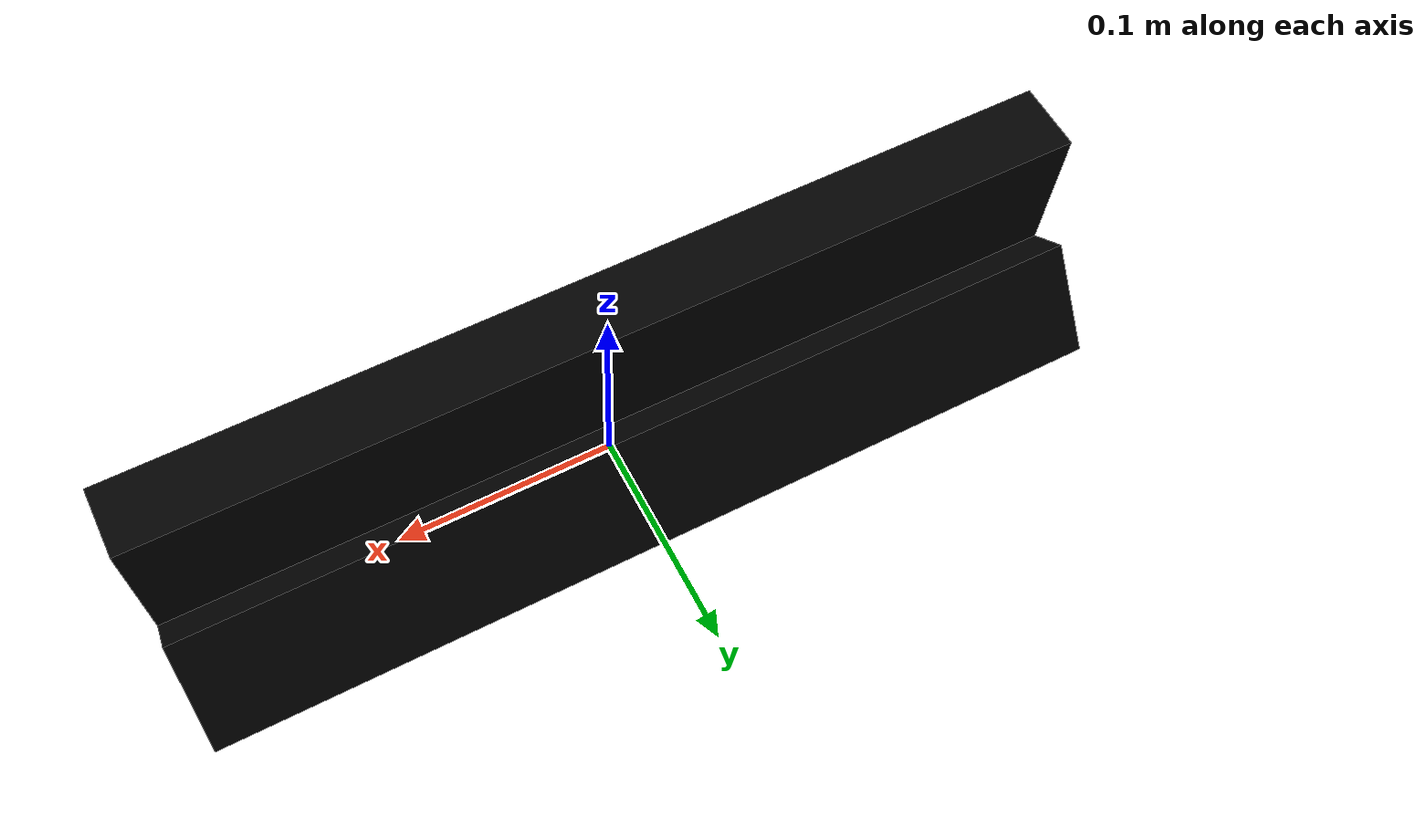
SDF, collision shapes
<?xml version='1.0'?>
<sdf version='1.7'>
  <model name='jersey_barrier3'>
    <link name='link'>
      <self_collide>0</self_collide>
      <enable_wind>0</enable_wind>
      <kinematic>0</kinematic>
      <pose>0 0 0 0 -0 0</pose>
      <gravity>1</gravity>
      <inertial>
        <mass>1</mass>
        <pose>0 0 0 0 -0 0</pose>
        <inertia>
          <ixx>1</ixx>
          <ixy>0</ixy>
          <ixz>0</ixz>
          <iyy>1</iyy>
          <iyz>0</iyz>
          <izz>1</izz>
        </inertia>
      </inertial>
      <visual name='visual'>
        <geometry>
          <mesh>
            <uri>model://jersey_barrier/meshes/jersey_barrier.dae</uri>
            <scale>0.1 0.1 0.1</scale>
          </mesh>
        </geometry>
        <material>
          <shader type='pixel'>
            <normal_map>__default__</normal_map>
          </shader>
          <script>
            <name>ModelPreview_15::link::visual_MATERIAL_</name>
          </script>
          <ambient>0 0 0 1</ambient>
          <diffuse>0 0 0 1</diffuse>
          <specular>0 0 0 1</specular>
          <emissive>0 0 0 1</emissive>
        </material>
        <pose>0 0 0 0 -0 0</pose>
        <transparency>0</transparency>
        <cast_shadows>1</cast_shadows>
      </visual>
      <collision name='upright'>
        <laser_retro>0</laser_retro>
        <max_contacts>10</max_contacts>
        <pose>0 0 0.057 0 -0 0</pose>
        <geometry>
          <box>
            <size>0.4 0.03 0.114</size>
          </box>
        </geometry>
        <surface>
          <friction>
            <ode>
              <mu>1</mu>
              <mu2>1</mu2>
              <fdir1>0 0 0</fdir1>
              <slip1>0</slip1>
              <slip2>0</slip2>
            </ode>
            <torsional>
              <coefficient>1</coefficient>
              <patch_radius>0</patch_radius>
              <surface_radius>0</surface_radius>
              <use_patch_radius>1</use_patch_radius>
              <ode>
                <slip>0</slip>
              </ode>
            </torsional>
          </friction>
          <bounce>
            <restitution_coefficient>0</restitution_coefficient>
            <threshold>1e+06</threshold>
          </bounce>
          <contact>
            <collide_without_contact>0</collide_without_contact>
            <collide_without_contact_bitmask>1</collide_without_contact_bitmask>
            <collide_bitmask>1</collide_bitmask>
            <ode>
              <soft_cfm>0</soft_cfm>
              <soft_erp>0.2</soft_erp>
              <kp>1e+13</kp>
              <kd>1</kd>
              <max_vel>0.01</max_vel>
              <min_depth>0</min_depth>
            </ode>
            <bullet>
              <split_impulse>1</split_impulse>
              <split_impulse_penetration_threshold>-0.01</split_impulse_penetration_threshold>
              <soft_cfm>0</soft_cfm>
              <soft_erp>0.2</soft_erp>
              <kp>1e+13</kp>
              <kd>1</kd>
            </bullet>
          </contact>
        </surface>
      </collision>
      <collision name='base'>
        <laser_retro>0</laser_retro>
        <max_contacts>10</max_contacts>
        <pose>0 0 0.0032 0 -0 0</pose>
        <geometry>
          <box>
            <size>0.4 0.08 0.0064</size>
          </box>
        </geometry>
        <surface>
          <friction>
            <ode>
              <mu>1</mu>
              <mu2>1</mu2>
              <fdir1>0 0 0</fdir1>
              <slip1>0</slip1>
              <slip2>0</slip2>
            </ode>
            <torsional>
              <coefficient>1</coefficient>
              <patch_radius>0</patch_radius>
              <surface_radius>0</surface_radius>
              <use_patch_radius>1</use_patch_radius>
              <ode>
                <slip>0</slip>
              </ode>
            </torsional>
          </friction>
          <bounce>
            <restitution_coefficient>0</restitution_coefficient>
            <threshold>1e+06</threshold>
          </bounce>
          <contact>
            <collide_without_contact>0</collide_without_contact>
            <collide_without_contact_bitmask>1</collide_without_contact_bitmask>
            <collide_bitmask>1</collide_bitmask>
            <ode>
              <soft_cfm>0</soft_cfm>
              <soft_erp>0.2</soft_erp>
              <kp>1e+13</kp>
              <kd>1</kd>
              <max_vel>0.01</max_vel>
              <min_depth>0</min_depth>
            </ode>
            <bullet>
              <split_impulse>1</split_impulse>
              <split_impulse_penetration_threshold>-0.01</split_impulse_penetration_threshold>
              <soft_cfm>0</soft_cfm>
              <soft_erp>0.2</soft_erp>
              <kp>1e+13</kp>
              <kd>1</kd>
            </bullet>
          </contact>
        </surface>
      </collision>
      <collision name='base2'>
        <laser_retro>0</laser_retro>
        <max_contacts>10</max_contacts>
        <pose>0 0 0.01 0 -0 0</pose>
        <geometry>
          <box>
            <size>0.4 0.065 0.01</size>
          </box>
        </geometry>
        <surface>
          <friction>
            <ode>
              <mu>1</mu>
              <mu2>1</mu2>
              <fdir1>0 0 0</fdir1>
              <slip1>0</slip1>
              <slip2>0</slip2>
            </ode>
            <torsional>
              <coefficient>1</coefficient>
              <patch_radius>0</patch_radius>
              <surface_radius>0</surface_radius>
              <use_patch_radius>1</use_patch_radius>
              <ode>
                <slip>0</slip>
              </ode>
            </torsional>
          </friction>
          <bounce>
            <restitution_coefficient>0</restitution_coefficient>
            <threshold>1e+06</threshold>
          </bounce>
          <contact>
            <collide_without_contact>0</collide_without_contact>
            <collide_without_contact_bitmask>1</collide_without_contact_bitmask>
            <collide_bitmask>1</collide_bitmask>
            <ode>
              <soft_cfm>0</soft_cfm>
              <soft_erp>0.2</soft_erp>
              <kp>1e+13</kp>
              <kd>1</kd>
              <max_vel>0.01</max_vel>
              <min_depth>0</min_depth>
            </ode>
            <bullet>
              <split_impulse>1</split_impulse>
              <split_impulse_penetration_threshold>-0.01</split_impulse_penetration_threshold>
              <soft_cfm>0</soft_cfm>
              <soft_erp>0.2</soft_erp>
              <kp>1e+13</kp>
              <kd>1</kd>
            </bullet>
          </contact>
        </surface>
      </collision>
      <collision name='base3'>
        <laser_retro>0</laser_retro>
        <max_contacts>10</max_contacts>
        <pose>0 0 0.02 0 -0 0</pose>
        <geometry>
          <box>
            <size>0.4 0.05 0.01</size>
          </box>
        </geometry>
        <surface>
          <friction>
            <ode>
              <mu>1</mu>
              <mu2>1</mu2>
              <fdir1>0 0 0</fdir1>
              <slip1>0</slip1>
              <slip2>0</slip2>
            </ode>
            <torsional>
              <coefficient>1</coefficient>
              <patch_radius>0</patch_radius>
              <surface_radius>0</surface_radius>
              <use_patch_radius>1</use_patch_radius>
              <ode>
                <slip>0</slip>
              </ode>
            </torsional>
          </friction>
          <bounce>
            <restitution_coefficient>0</restitution_coefficient>
            <threshold>1e+06</threshold>
          </bounce>
          <contact>
            <collide_without_contact>0</collide_without_contact>
            <collide_without_contact_bitmask>1</collide_without_contact_bitmask>
            <collide_bitmask>1</collide_bitmask>
            <ode>
              <soft_cfm>0</soft_cfm>
              <soft_erp>0.2</soft_erp>
              <kp>1e+13</kp>
              <kd>1</kd>
              <max_vel>0.01</max_vel>
              <min_depth>0</min_depth>
            </ode>
            <bullet>
              <split_impulse>1</split_impulse>
              <split_impulse_penetration_threshold>-0.01</split_impulse_penetration_threshold>
              <soft_cfm>0</soft_cfm>
              <soft_erp>0.2</soft_erp>
              <kp>1e+13</kp>
              <kd>1</kd>
            </bullet>
          </contact>
        </surface>
      </collision>
      <collision name='right-angle'>
        <laser_retro>0</laser_retro>
        <max_contacts>10</max_contacts>
        <pose>0 0.022 0.024 -0.9 0 0</pose>
        <geometry>
          <box>
            <size>0.4 0.05 0.06</size>
          </box>
        </geometry>
        <surface>
          <friction>
            <ode>
              <mu>1</mu>
              <mu2>1</mu2>
              <fdir1>0 0 0</fdir1>
              <slip1>0</slip1>
              <slip2>0</slip2>
            </ode>
            <torsional>
              <coefficient>1</coefficient>
              <patch_radius>0</patch_radius>
              <surface_radius>0</surface_radius>
              <use_patch_radius>1</use_patch_radius>
              <ode>
                <slip>0</slip>
              </ode>
            </torsional>
          </friction>
          <bounce>
            <restitution_coefficient>0</restitution_coefficient>
            <threshold>1e+06</threshold>
          </bounce>
          <contact>
            <collide_without_contact>0</collide_without_contact>
            <collide_without_contact_bitmask>1</collide_without_contact_bitmask>
            <collide_bitmask>1</collide_bitmask>
            <ode>
              <soft_cfm>0</soft_cfm>
              <soft_erp>0.2</soft_erp>
              <kp>1e+13</kp>
              <kd>1</kd>
              <max_vel>0.01</max_vel>
              <min_depth>0</min_depth>
            </ode>
            <bullet>
              <split_impulse>1</split_impulse>
              <split_impulse_penetration_threshold>-0.01</split_impulse_penetration_threshold>
              <soft_cfm>0</soft_cfm>
              <soft_erp>0.2</soft_erp>
              <kp>1e+13</kp>
              <kd>1</kd>
            </bullet>
          </contact>
        </surface>
      </collision>
      <collision name='left-angle'>
        <laser_retro>0</laser_retro>
        <max_contacts>10</max_contacts>
        <pose>0 -0.022 0.024 0.9 -0 0</pose>
        <geometry>
          <box>
            <size>0.4 0.05 0.006</size>
          </box>
        </geometry>
        <surface>
          <friction>
            <ode>
              <mu>1</mu>
              <mu2>1</mu2>
              <fdir1>0 0 0</fdir1>
              <slip1>0</slip1>
              <slip2>0</slip2>
            </ode>
            <torsional>
              <coefficient>1</coefficient>
              <patch_radius>0</patch_radius>
              <surface_radius>0</surface_radius>
              <use_patch_radius>1</use_patch_radius>
              <ode>
                <slip>0</slip>
              </ode>
            </torsional>
          </friction>
          <bounce>
            <restitution_coefficient>0</restitution_coefficient>
            <threshold>1e+06</threshold>
          </bounce>
          <contact>
            <collide_without_contact>0</collide_without_contact>
            <collide_without_contact_bitmask>1</collide_without_contact_bitmask>
            <collide_bitmask>1</collide_bitmask>
            <ode>
              <soft_cfm>0</soft_cfm>
              <soft_erp>0.2</soft_erp>
              <kp>1e+13</kp>
              <kd>1</kd>
              <max_vel>0.01</max_vel>
              <min_depth>0</min_depth>
            </ode>
            <bullet>
              <split_impulse>1</split_impulse>
              <split_impulse_penetration_threshold>-0.01</split_impulse_penetration_threshold>
              <soft_cfm>0</soft_cfm>
              <soft_erp>0.2</soft_erp>
              <kp>1e+13</kp>
              <kd>1</kd>
            </bullet>
          </contact>
        </surface>
      </collision>
    </link>
    <static>1</static>
    <allow_auto_disable>1</allow_auto_disable>
  </model>
</sdf>
